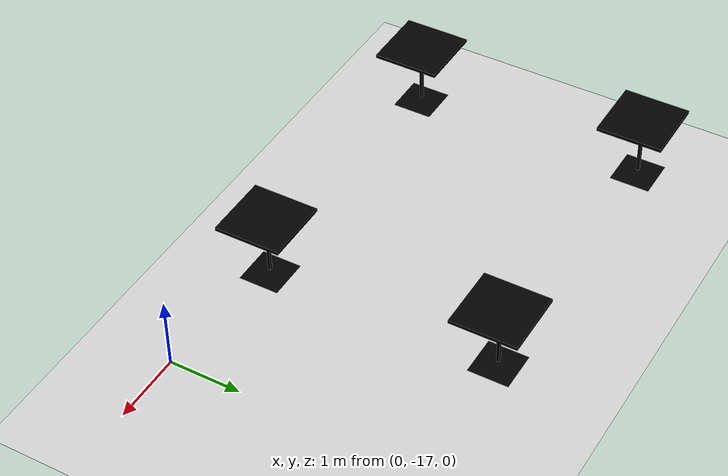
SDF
<sdf version="1.7">
 <world name="default">
  <light name="sun" type="directional">
   <pose>0 0 10 0 -0 0</pose>
   <diffuse>0.8 0.8 0.8 1</diffuse>
   <specular>0.2 0.2 0.2 1</specular>
   <attenuation>
    <range>1000</range>
    <constant>0.9</constant>
    <linear>0.01</linear>
    <quadratic>0.001</quadratic>
   </attenuation>
   <direction>-0.5 0.1 -0.9</direction>
   <spot><inner_angle>0</inner_angle><outer_angle>0</outer_angle><falloff>0</falloff></spot>
  </light>
  <model name="ground_plane">
   <static>1</static>
   <link name="link">
    <collision name="collision">
     <geometry><plane><normal>0 0 1</normal><size>100 100</size></plane></geometry>
     <surface>
      <contact><collide_bitmask>65535</collide_bitmask></contact>
      <friction><ode><mu>100</mu><mu2>50</mu2></ode></friction>
     </surface>
    </collision>
    <visual name="visual">
     <cast_shadows>0</cast_shadows>
     <geometry><plane><normal>0 0 1</normal><size>100 100</size></plane></geometry>
     <material>
      <script><uri>file://media/materials/scripts/gazebo.material</uri><name>Gazebo/Grey</name></script>
     </material>
    </visual>
   </link>
  </model>
  <gravity>0 0 -9.8</gravity>
  <magnetic_field>6e-06 2.3e-05 -4.2e-05</magnetic_field>
  <atmosphere type="adiabatic"/>
  <physics type="ode">
   <max_step_size>0.001</max_step_size>
   <real_time_factor>1</real_time_factor>
   <real_time_update_rate>1000</real_time_update_rate>
  </physics>
  <scene><ambient>0.4 0.4 0.4 1</ambient><background>0.7 0.7 0.7 1</background><shadows>1</shadows></scene>
  <spherical_coordinates>
   <surface_model>EARTH_WGS84</surface_model>
   <latitude_deg>0</latitude_deg>
   <longitude_deg>0</longitude_deg>
   <elevation>0</elevation>
   <heading_deg>0</heading_deg>
  </spherical_coordinates>
  <model name="cafe_table">
   <link name="link">
    <inertial>
     <mass>1</mass>
     <inertia><ixx>1</ixx><ixy>0</ixy><ixz>0</ixz><iyy>1</iyy><iyz>0</iyz><izz>1</izz></inertia>
    </inertial>
    <visual name="visual">
     <geometry><mesh><uri>model://cafe_table/meshes/cafe_table.dae</uri><scale>1 1 1.2</scale></mesh></geometry>
     <material>
      <shader type="pixel"><normal_map>__default__</normal_map></shader>
      <script><name>ModelPreview_1::link::visual_MATERIAL_</name><uri>__default__</uri></script>
      <ambient>1 1 0 1</ambient>
      <diffuse>0 0 0 1</diffuse>
      <specular>0 0 0 1</specular>
      <emissive>0 0 0 1</emissive>
     </material>
    </visual>
    <collision name="surface">
     <pose>0 0 0.755 0 -0 0</pose>
     <geometry><box><size>0.913 0.913 0.04</size></box></geometry>
     <surface>
      <friction>
       <ode><mu>1</mu><mu2>1</mu2><fdir1>0 0 0</fdir1><slip1>0</slip1><slip2>0</slip2></ode>
       <torsional>
        <coefficient>1</coefficient>
        <patch_radius>0</patch_radius>
        <surface_radius>0</surface_radius>
        <use_patch_radius>1</use_patch_radius>
        <ode><slip>0</slip></ode>
       </torsional>
      </friction>
      <bounce><restitution_coefficient>0</restitution_coefficient><threshold>1e+06</threshold></bounce>
      <contact>
       <collide_without_contact>0</collide_without_contact>
       <collide_without_contact_bitmask>1</collide_without_contact_bitmask>
       <collide_bitmask>1</collide_bitmask>
       <ode>
        <soft_cfm>0</soft_cfm>
        <soft_erp>0.2</soft_erp>
        <kp>1e+13</kp>
        <kd>1</kd>
        <max_vel>0.01</max_vel>
        <min_depth>0</min_depth>
       </ode>
       <bullet>
        <split_impulse>1</split_impulse>
        <split_impulse_penetration_threshold>-0.01</split_impulse_penetration_threshold>
        <soft_cfm>0</soft_cfm>
        <soft_erp>0.2</soft_erp>
        <kp>1e+13</kp>
        <kd>1</kd>
       </bullet>
      </contact>
     </surface>
    </collision>
    <collision name="column">
     <pose>0 0 0.37 0 -0 0</pose>
     <geometry><box><size>0.042 0.042 0.74</size></box></geometry>
     <surface>
      <friction>
       <ode><mu>1</mu><mu2>1</mu2><fdir1>0 0 0</fdir1><slip1>0</slip1><slip2>0</slip2></ode>
       <torsional>
        <coefficient>1</coefficient>
        <patch_radius>0</patch_radius>
        <surface_radius>0</surface_radius>
        <use_patch_radius>1</use_patch_radius>
        <ode><slip>0</slip></ode>
       </torsional>
      </friction>
      <bounce><restitution_coefficient>0</restitution_coefficient><threshold>1e+06</threshold></bounce>
      <contact>
       <collide_without_contact>0</collide_without_contact>
       <collide_without_contact_bitmask>1</collide_without_contact_bitmask>
       <collide_bitmask>1</collide_bitmask>
       <ode>
        <soft_cfm>0</soft_cfm>
        <soft_erp>0.2</soft_erp>
        <kp>1e+13</kp>
        <kd>1</kd>
        <max_vel>0.01</max_vel>
        <min_depth>0</min_depth>
       </ode>
       <bullet>
        <split_impulse>1</split_impulse>
        <split_impulse_penetration_threshold>-0.01</split_impulse_penetration_threshold>
        <soft_cfm>0</soft_cfm>
        <soft_erp>0.2</soft_erp>
        <kp>1e+13</kp>
        <kd>1</kd>
       </bullet>
      </contact>
     </surface>
    </collision>
    <collision name="base">
     <pose>0 0 0.02 0 -0 0</pose>
     <geometry><box><size>0.56 0.56 0.04</size></box></geometry>
     <surface>
      <friction>
       <ode><mu>1</mu><mu2>1</mu2><fdir1>0 0 0</fdir1><slip1>0</slip1><slip2>0</slip2></ode>
       <torsional>
        <coefficient>1</coefficient>
        <patch_radius>0</patch_radius>
        <surface_radius>0</surface_radius>
        <use_patch_radius>1</use_patch_radius>
        <ode><slip>0</slip></ode>
       </torsional>
      </friction>
      <bounce><restitution_coefficient>0</restitution_coefficient><threshold>1e+06</threshold></bounce>
      <contact>
       <collide_without_contact>0</collide_without_contact>
       <collide_without_contact_bitmask>1</collide_without_contact_bitmask>
       <collide_bitmask>1</collide_bitmask>
       <ode>
        <soft_cfm>0</soft_cfm>
        <soft_erp>0.2</soft_erp>
        <kp>1e+13</kp>
        <kd>1</kd>
        <max_vel>0.01</max_vel>
        <min_depth>0</min_depth>
       </ode>
       <bullet>
        <split_impulse>1</split_impulse>
        <split_impulse_penetration_threshold>-0.01</split_impulse_penetration_threshold>
        <soft_cfm>0</soft_cfm>
        <soft_erp>0.2</soft_erp>
        <kp>1e+13</kp>
        <kd>1</kd>
       </bullet>
      </contact>
     </surface>
    </collision>
   </link>
   <static>1</static>
   <pose>-1.76178 -13.4064 0.205352 0 -0 0</pose>
  </model>
  <model name="cafe_table_clone">
   <link name="link">
    <inertial>
     <mass>1</mass>
     <inertia><ixx>1</ixx><ixy>0</ixy><ixz>0</ixz><iyy>1</iyy><iyz>0</iyz><izz>1</izz></inertia>
    </inertial>
    <visual name="visual">
     <geometry><mesh><uri>model://cafe_table/meshes/cafe_table.dae</uri><scale>1 1 1.2</scale></mesh></geometry>
     <material>
      <shader type="pixel"><normal_map>__default__</normal_map></shader>
      <script><name>ModelPreview_1::link::visual_MATERIAL_</name><uri>__default__</uri></script>
      <ambient>1 1 0 1</ambient>
      <diffuse>0 0 0 1</diffuse>
      <specular>0 0 0 1</specular>
      <emissive>0 0 0 1</emissive>
     </material>
    </visual>
    <collision name="surface">
     <pose>0 0 0.755 0 -0 0</pose>
     <geometry><box><size>0.913 0.913 0.04</size></box></geometry>
     <surface>
      <friction>
       <ode><mu>1</mu><mu2>1</mu2><fdir1>0 0 0</fdir1><slip1>0</slip1><slip2>0</slip2></ode>
       <torsional>
        <coefficient>1</coefficient>
        <patch_radius>0</patch_radius>
        <surface_radius>0</surface_radius>
        <use_patch_radius>1</use_patch_radius>
        <ode><slip>0</slip></ode>
       </torsional>
      </friction>
      <bounce><restitution_coefficient>0</restitution_coefficient><threshold>1e+06</threshold></bounce>
      <contact>
       <collide_without_contact>0</collide_without_contact>
       <collide_without_contact_bitmask>1</collide_without_contact_bitmask>
       <collide_bitmask>1</collide_bitmask>
       <ode>
        <soft_cfm>0</soft_cfm>
        <soft_erp>0.2</soft_erp>
        <kp>1e+13</kp>
        <kd>1</kd>
        <max_vel>0.01</max_vel>
        <min_depth>0</min_depth>
       </ode>
       <bullet>
        <split_impulse>1</split_impulse>
        <split_impulse_penetration_threshold>-0.01</split_impulse_penetration_threshold>
        <soft_cfm>0</soft_cfm>
        <soft_erp>0.2</soft_erp>
        <kp>1e+13</kp>
        <kd>1</kd>
       </bullet>
      </contact>
     </surface>
    </collision>
    <collision name="column">
     <pose>0 0 0.37 0 -0 0</pose>
     <geometry><box><size>0.042 0.042 0.74</size></box></geometry>
     <surface>
      <friction>
       <ode><mu>1</mu><mu2>1</mu2><fdir1>0 0 0</fdir1><slip1>0</slip1><slip2>0</slip2></ode>
       <torsional>
        <coefficient>1</coefficient>
        <patch_radius>0</patch_radius>
        <surface_radius>0</surface_radius>
        <use_patch_radius>1</use_patch_radius>
        <ode><slip>0</slip></ode>
       </torsional>
      </friction>
      <bounce><restitution_coefficient>0</restitution_coefficient><threshold>1e+06</threshold></bounce>
      <contact>
       <collide_without_contact>0</collide_without_contact>
       <collide_without_contact_bitmask>1</collide_without_contact_bitmask>
       <collide_bitmask>1</collide_bitmask>
       <ode>
        <soft_cfm>0</soft_cfm>
        <soft_erp>0.2</soft_erp>
        <kp>1e+13</kp>
        <kd>1</kd>
        <max_vel>0.01</max_vel>
        <min_depth>0</min_depth>
       </ode>
       <bullet>
        <split_impulse>1</split_impulse>
        <split_impulse_penetration_threshold>-0.01</split_impulse_penetration_threshold>
        <soft_cfm>0</soft_cfm>
        <soft_erp>0.2</soft_erp>
        <kp>1e+13</kp>
        <kd>1</kd>
       </bullet>
      </contact>
     </surface>
    </collision>
    <collision name="base">
     <pose>0 0 0.02 0 -0 0</pose>
     <geometry><box><size>0.56 0.56 0.04</size></box></geometry>
     <surface>
      <friction>
       <ode><mu>1</mu><mu2>1</mu2><fdir1>0 0 0</fdir1><slip1>0</slip1><slip2>0</slip2></ode>
       <torsional>
        <coefficient>1</coefficient>
        <patch_radius>0</patch_radius>
        <surface_radius>0</surface_radius>
        <use_patch_radius>1</use_patch_radius>
        <ode><slip>0</slip></ode>
       </torsional>
      </friction>
      <bounce><restitution_coefficient>0</restitution_coefficient><threshold>1e+06</threshold></bounce>
      <contact>
       <collide_without_contact>0</collide_without_contact>
       <collide_without_contact_bitmask>1</collide_without_contact_bitmask>
       <collide_bitmask>1</collide_bitmask>
       <ode>
        <soft_cfm>0</soft_cfm>
        <soft_erp>0.2</soft_erp>
        <kp>1e+13</kp>
        <kd>1</kd>
        <max_vel>0.01</max_vel>
        <min_depth>0</min_depth>
       </ode>
       <bullet>
        <split_impulse>1</split_impulse>
        <split_impulse_penetration_threshold>-0.01</split_impulse_penetration_threshold>
        <soft_cfm>0</soft_cfm>
        <soft_erp>0.2</soft_erp>
        <kp>1e+13</kp>
        <kd>1</kd>
       </bullet>
      </contact>
     </surface>
    </collision>
   </link>
   <static>1</static>
   <pose>-5.79743 -13.389 0.205352 0 -0 0</pose>
  </model>
  <model name="cafe_table_clone_0">
   <link name="link">
    <inertial>
     <mass>1</mass>
     <inertia><ixx>1</ixx><ixy>0</ixy><ixz>0</ixz><iyy>1</iyy><iyz>0</iyz><izz>1</izz></inertia>
    </inertial>
    <visual name="visual">
     <geometry><mesh><uri>model://cafe_table/meshes/cafe_table.dae</uri><scale>1 1 1.2</scale></mesh></geometry>
     <material>
      <shader type="pixel"><normal_map>__default__</normal_map></shader>
      <script><name>ModelPreview_1::link::visual_MATERIAL_</name><uri>__default__</uri></script>
      <ambient>1 1 0 1</ambient>
      <diffuse>0 0 0 1</diffuse>
      <specular>0 0 0 1</specular>
      <emissive>0 0 0 1</emissive>
     </material>
    </visual>
    <collision name="surface">
     <pose>0 0 0.755 0 -0 0</pose>
     <geometry><box><size>0.913 0.913 0.04</size></box></geometry>
     <surface>
      <friction>
       <ode><mu>1</mu><mu2>1</mu2><fdir1>0 0 0</fdir1><slip1>0</slip1><slip2>0</slip2></ode>
       <torsional>
        <coefficient>1</coefficient>
        <patch_radius>0</patch_radius>
        <surface_radius>0</surface_radius>
        <use_patch_radius>1</use_patch_radius>
        <ode><slip>0</slip></ode>
       </torsional>
      </friction>
      <bounce><restitution_coefficient>0</restitution_coefficient><threshold>1e+06</threshold></bounce>
      <contact>
       <collide_without_contact>0</collide_without_contact>
       <collide_without_contact_bitmask>1</collide_without_contact_bitmask>
       <collide_bitmask>1</collide_bitmask>
       <ode>
        <soft_cfm>0</soft_cfm>
        <soft_erp>0.2</soft_erp>
        <kp>1e+13</kp>
        <kd>1</kd>
        <max_vel>0.01</max_vel>
        <min_depth>0</min_depth>
       </ode>
       <bullet>
        <split_impulse>1</split_impulse>
        <split_impulse_penetration_threshold>-0.01</split_impulse_penetration_threshold>
        <soft_cfm>0</soft_cfm>
        <soft_erp>0.2</soft_erp>
        <kp>1e+13</kp>
        <kd>1</kd>
       </bullet>
      </contact>
     </surface>
    </collision>
    <collision name="column">
     <pose>0 0 0.37 0 -0 0</pose>
     <geometry><box><size>0.042 0.042 0.74</size></box></geometry>
     <surface>
      <friction>
       <ode><mu>1</mu><mu2>1</mu2><fdir1>0 0 0</fdir1><slip1>0</slip1><slip2>0</slip2></ode>
       <torsional>
        <coefficient>1</coefficient>
        <patch_radius>0</patch_radius>
        <surface_radius>0</surface_radius>
        <use_patch_radius>1</use_patch_radius>
        <ode><slip>0</slip></ode>
       </torsional>
      </friction>
      <bounce><restitution_coefficient>0</restitution_coefficient><threshold>1e+06</threshold></bounce>
      <contact>
       <collide_without_contact>0</collide_without_contact>
       <collide_without_contact_bitmask>1</collide_without_contact_bitmask>
       <collide_bitmask>1</collide_bitmask>
       <ode>
        <soft_cfm>0</soft_cfm>
        <soft_erp>0.2</soft_erp>
        <kp>1e+13</kp>
        <kd>1</kd>
        <max_vel>0.01</max_vel>
        <min_depth>0</min_depth>
       </ode>
       <bullet>
        <split_impulse>1</split_impulse>
        <split_impulse_penetration_threshold>-0.01</split_impulse_penetration_threshold>
        <soft_cfm>0</soft_cfm>
        <soft_erp>0.2</soft_erp>
        <kp>1e+13</kp>
        <kd>1</kd>
       </bullet>
      </contact>
     </surface>
    </collision>
    <collision name="base">
     <pose>0 0 0.02 0 -0 0</pose>
     <geometry><box><size>0.56 0.56 0.04</size></box></geometry>
     <surface>
      <friction>
       <ode><mu>1</mu><mu2>1</mu2><fdir1>0 0 0</fdir1><slip1>0</slip1><slip2>0</slip2></ode>
       <torsional>
        <coefficient>1</coefficient>
        <patch_radius>0</patch_radius>
        <surface_radius>0</surface_radius>
        <use_patch_radius>1</use_patch_radius>
        <ode><slip>0</slip></ode>
       </torsional>
      </friction>
      <bounce><restitution_coefficient>0</restitution_coefficient><threshold>1e+06</threshold></bounce>
      <contact>
       <collide_without_contact>0</collide_without_contact>
       <collide_without_contact_bitmask>1</collide_without_contact_bitmask>
       <collide_bitmask>1</collide_bitmask>
       <ode>
        <soft_cfm>0</soft_cfm>
        <soft_erp>0.2</soft_erp>
        <kp>1e+13</kp>
        <kd>1</kd>
        <max_vel>0.01</max_vel>
        <min_depth>0</min_depth>
       </ode>
       <bullet>
        <split_impulse>1</split_impulse>
        <split_impulse_penetration_threshold>-0.01</split_impulse_penetration_threshold>
        <soft_cfm>0</soft_cfm>
        <soft_erp>0.2</soft_erp>
        <kp>1e+13</kp>
        <kd>1</kd>
       </bullet>
      </contact>
     </surface>
    </collision>
   </link>
   <static>1</static>
   <pose>-1.755 -16.6694 0.205352 0 -0 0</pose>
  </model>
  <model name="cafe_table_clone_1">
   <link name="link">
    <inertial>
     <mass>1</mass>
     <inertia><ixx>1</ixx><ixy>0</ixy><ixz>0</ixz><iyy>1</iyy><iyz>0</iyz><izz>1</izz></inertia>
    </inertial>
    <visual name="visual">
     <geometry><mesh><uri>model://cafe_table/meshes/cafe_table.dae</uri><scale>1 1 1.2</scale></mesh></geometry>
     <material>
      <shader type="pixel"><normal_map>__default__</normal_map></shader>
      <script><name>ModelPreview_1::link::visual_MATERIAL_</name><uri>__default__</uri></script>
      <ambient>1 1 0 1</ambient>
      <diffuse>0 0 0 1</diffuse>
      <specular>0 0 0 1</specular>
      <emissive>0 0 0 1</emissive>
     </material>
    </visual>
    <collision name="surface">
     <pose>0 0 0.755 0 -0 0</pose>
     <geometry><box><size>0.913 0.913 0.04</size></box></geometry>
     <surface>
      <friction>
       <ode><mu>1</mu><mu2>1</mu2><fdir1>0 0 0</fdir1><slip1>0</slip1><slip2>0</slip2></ode>
       <torsional>
        <coefficient>1</coefficient>
        <patch_radius>0</patch_radius>
        <surface_radius>0</surface_radius>
        <use_patch_radius>1</use_patch_radius>
        <ode><slip>0</slip></ode>
       </torsional>
      </friction>
      <bounce><restitution_coefficient>0</restitution_coefficient><threshold>1e+06</threshold></bounce>
      <contact>
       <collide_without_contact>0</collide_without_contact>
       <collide_without_contact_bitmask>1</collide_without_contact_bitmask>
       <collide_bitmask>1</collide_bitmask>
       <ode>
        <soft_cfm>0</soft_cfm>
        <soft_erp>0.2</soft_erp>
        <kp>1e+13</kp>
        <kd>1</kd>
        <max_vel>0.01</max_vel>
        <min_depth>0</min_depth>
       </ode>
       <bullet>
        <split_impulse>1</split_impulse>
        <split_impulse_penetration_threshold>-0.01</split_impulse_penetration_threshold>
        <soft_cfm>0</soft_cfm>
        <soft_erp>0.2</soft_erp>
        <kp>1e+13</kp>
        <kd>1</kd>
       </bullet>
      </contact>
     </surface>
    </collision>
    <collision name="column">
     <pose>0 0 0.37 0 -0 0</pose>
     <geometry><box><size>0.042 0.042 0.74</size></box></geometry>
     <surface>
      <friction>
       <ode><mu>1</mu><mu2>1</mu2><fdir1>0 0 0</fdir1><slip1>0</slip1><slip2>0</slip2></ode>
       <torsional>
        <coefficient>1</coefficient>
        <patch_radius>0</patch_radius>
        <surface_radius>0</surface_radius>
        <use_patch_radius>1</use_patch_radius>
        <ode><slip>0</slip></ode>
       </torsional>
      </friction>
      <bounce><restitution_coefficient>0</restitution_coefficient><threshold>1e+06</threshold></bounce>
      <contact>
       <collide_without_contact>0</collide_without_contact>
       <collide_without_contact_bitmask>1</collide_without_contact_bitmask>
       <collide_bitmask>1</collide_bitmask>
       <ode>
        <soft_cfm>0</soft_cfm>
        <soft_erp>0.2</soft_erp>
        <kp>1e+13</kp>
        <kd>1</kd>
        <max_vel>0.01</max_vel>
        <min_depth>0</min_depth>
       </ode>
       <bullet>
        <split_impulse>1</split_impulse>
        <split_impulse_penetration_threshold>-0.01</split_impulse_penetration_threshold>
        <soft_cfm>0</soft_cfm>
        <soft_erp>0.2</soft_erp>
        <kp>1e+13</kp>
        <kd>1</kd>
       </bullet>
      </contact>
     </surface>
    </collision>
    <collision name="base">
     <pose>0 0 0.02 0 -0 0</pose>
     <geometry><box><size>0.56 0.56 0.04</size></box></geometry>
     <surface>
      <friction>
       <ode><mu>1</mu><mu2>1</mu2><fdir1>0 0 0</fdir1><slip1>0</slip1><slip2>0</slip2></ode>
       <torsional>
        <coefficient>1</coefficient>
        <patch_radius>0</patch_radius>
        <surface_radius>0</surface_radius>
        <use_patch_radius>1</use_patch_radius>
        <ode><slip>0</slip></ode>
       </torsional>
      </friction>
      <bounce><restitution_coefficient>0</restitution_coefficient><threshold>1e+06</threshold></bounce>
      <contact>
       <collide_without_contact>0</collide_without_contact>
       <collide_without_contact_bitmask>1</collide_without_contact_bitmask>
       <collide_bitmask>1</collide_bitmask>
       <ode>
        <soft_cfm>0</soft_cfm>
        <soft_erp>0.2</soft_erp>
        <kp>1e+13</kp>
        <kd>1</kd>
        <max_vel>0.01</max_vel>
        <min_depth>0</min_depth>
       </ode>
       <bullet>
        <split_impulse>1</split_impulse>
        <split_impulse_penetration_threshold>-0.01</split_impulse_penetration_threshold>
        <soft_cfm>0</soft_cfm>
        <soft_erp>0.2</soft_erp>
        <kp>1e+13</kp>
        <kd>1</kd>
       </bullet>
      </contact>
     </surface>
    </collision>
   </link>
   <static>1</static>
   <pose>-5.73276 -16.6886 0.205352 0 -0 0</pose>
  </model>
 </world>
</sdf>
